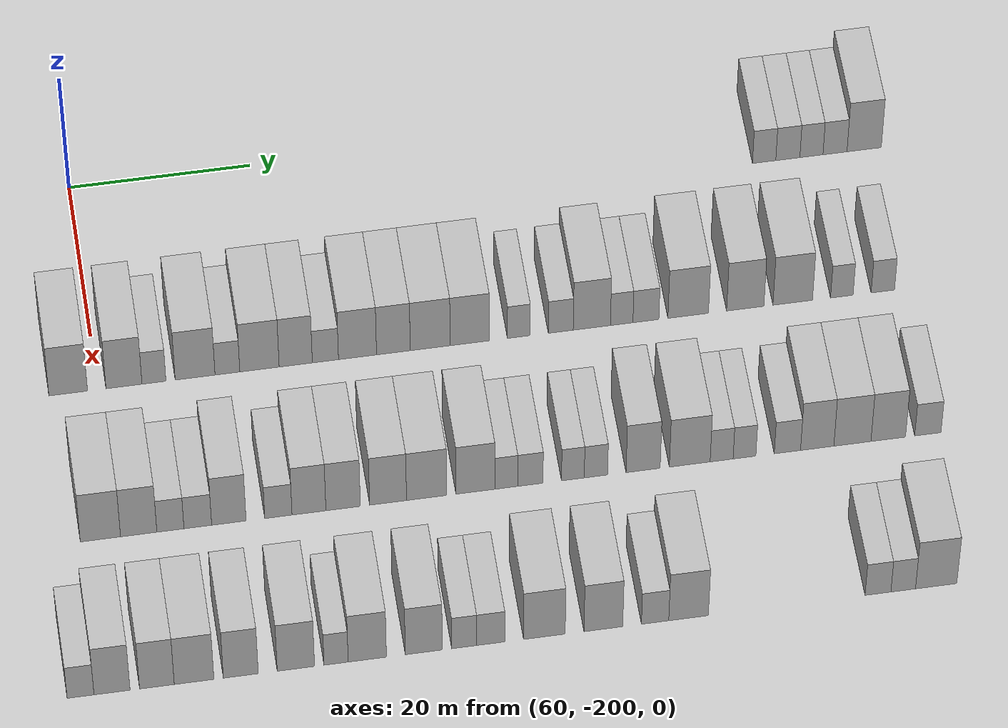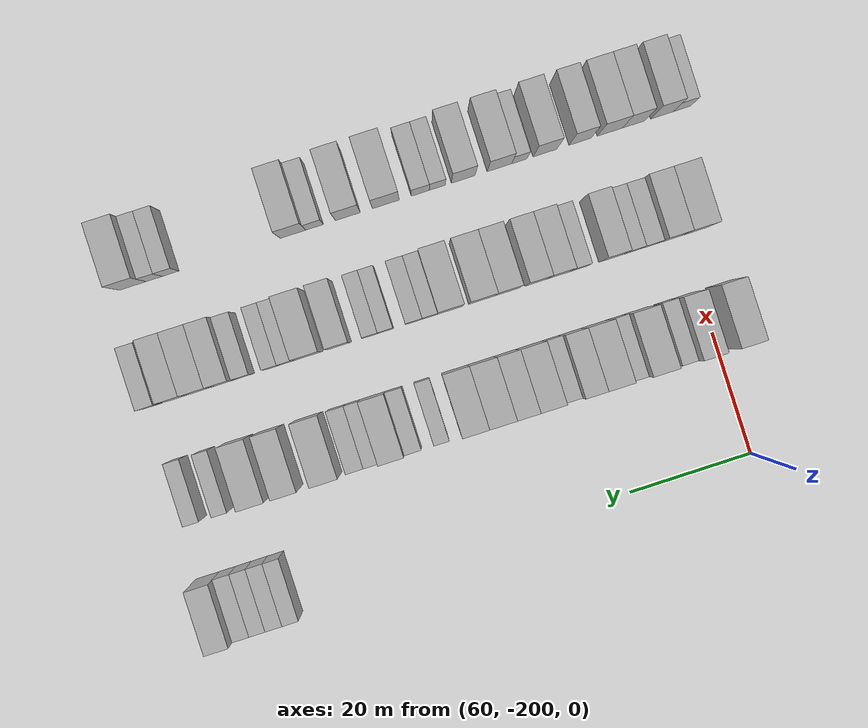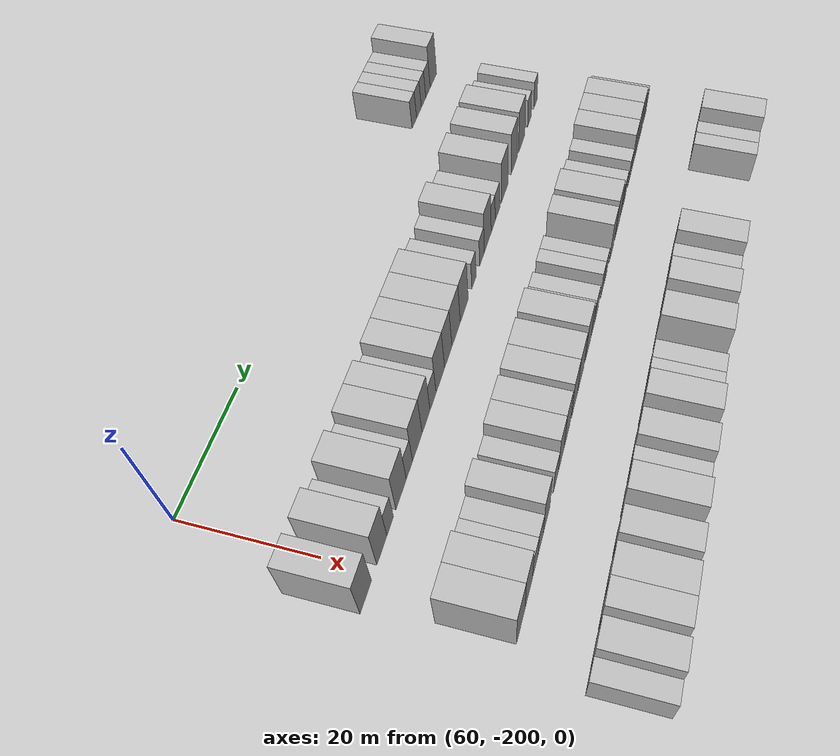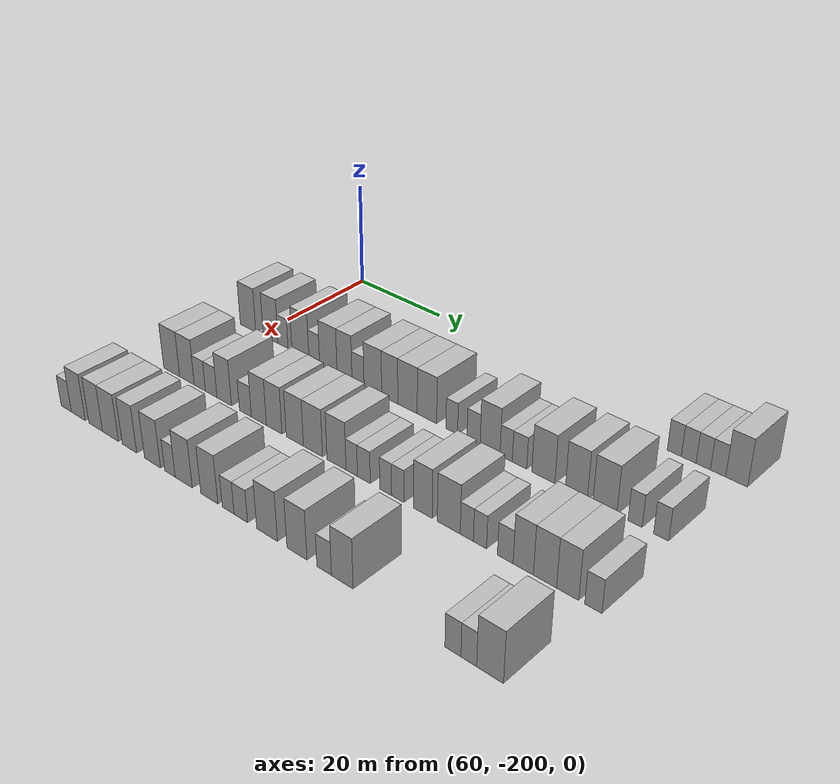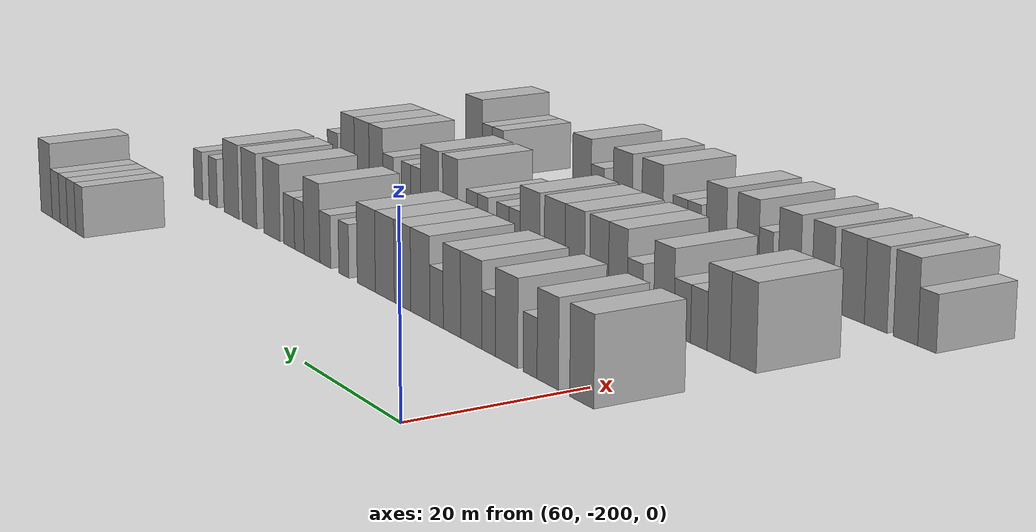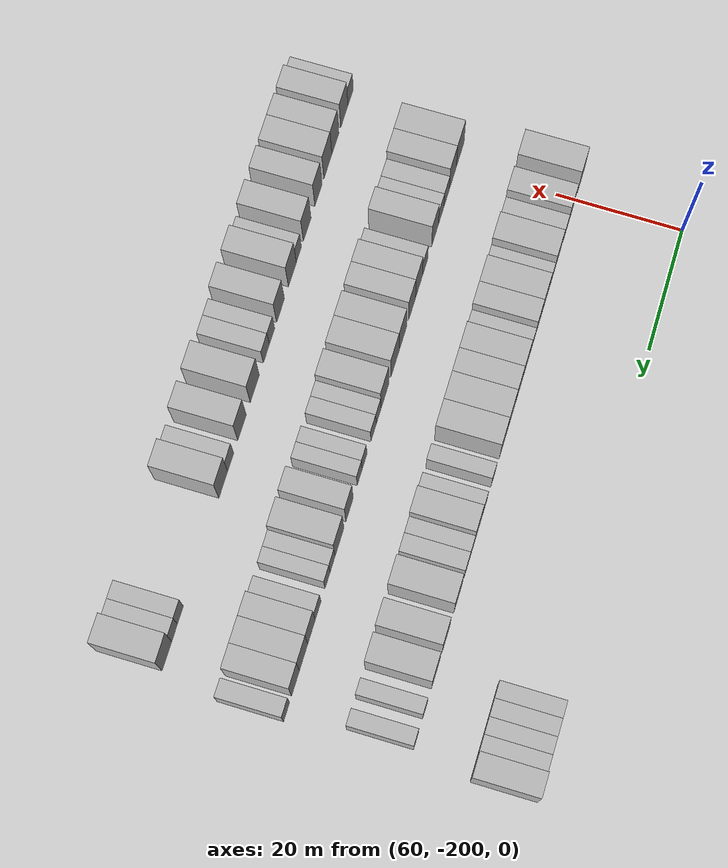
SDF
<sdf version="1.6">
 <world name="default">
  <model name="building_406">
   <static>1</static>
   <pose>63.0000 -123.8718 0 0.000000 0.000000 0.000000</pose>
   <link name="link">
    <pose>0 0 3.00 0 0 0</pose>
    <collision name="collision"><geometry><box><size>10.0000 2.6096 6.0000</size></box></geometry></collision>
    <visual name="visual">
     <cast_shadows>0</cast_shadows>
     <geometry><box><size>10.0000 2.6096 6.0000</size></box></geometry>
     <material>
      <script>
       <uri>model://HANNAS_wall/materials/scripts</uri>
       <uri>model://HANNAS_wall/materials/textures</uri>
       <name>vrc/HANNAS_wall</name>
      </script>
     </material>
    </visual>
   </link>
  </model>
  <model name="building_407">
   <static>1</static>
   <pose>63.0000 -121.2201 0 0.000000 0.000000 0.000000</pose>
   <link name="link">
    <pose>0 0 3.00 0 0 0</pose>
    <collision name="collision"><geometry><box><size>10.0000 2.6938 6.0000</size></box></geometry></collision>
    <visual name="visual">
     <cast_shadows>0</cast_shadows>
     <geometry><box><size>10.0000 2.6938 6.0000</size></box></geometry>
     <material>
      <script>
       <uri>model://HANNAS_wall/materials/scripts</uri>
       <uri>model://HANNAS_wall/materials/textures</uri>
       <name>vrc/HANNAS_wall</name>
      </script>
     </material>
    </visual>
   </link>
  </model>
  <model name="building_408">
   <static>1</static>
   <pose>63.0000 -118.5775 0 0.000000 0.000000 0.000000</pose>
   <link name="link">
    <pose>0 0 3.00 0 0 0</pose>
    <collision name="collision"><geometry><box><size>10.0000 2.5914 6.0000</size></box></geometry></collision>
    <visual name="visual">
     <cast_shadows>0</cast_shadows>
     <geometry><box><size>10.0000 2.5914 6.0000</size></box></geometry>
     <material>
      <script>
       <uri>model://HANNAS_wall/materials/scripts</uri>
       <uri>model://HANNAS_wall/materials/textures</uri>
       <name>vrc/HANNAS_wall</name>
      </script>
     </material>
    </visual>
   </link>
  </model>
  <model name="building_409">
   <static>1</static>
   <pose>63.0000 -115.9377 0 0.000000 0.000000 0.000000</pose>
   <link name="link">
    <pose>0 0 3.00 0 0 0</pose>
    <collision name="collision"><geometry><box><size>10.0000 2.6881 6.0000</size></box></geometry></collision>
    <visual name="visual">
     <cast_shadows>0</cast_shadows>
     <geometry><box><size>10.0000 2.6881 6.0000</size></box></geometry>
     <material>
      <script>
       <uri>model://HANNAS_wall/materials/scripts</uri>
       <uri>model://HANNAS_wall/materials/textures</uri>
       <name>vrc/HANNAS_wall</name>
      </script>
     </material>
    </visual>
   </link>
  </model>
  <model name="building_410">
   <static>1</static>
   <pose>63.0000 -112.6688 0 0.000000 0.000000 0.000000</pose>
   <link name="link">
    <pose>0 0 4.50 0 0 0</pose>
    <collision name="collision"><geometry><box><size>10.0000 3.8497 9.0000</size></box></geometry></collision>
    <visual name="visual">
     <cast_shadows>0</cast_shadows>
     <geometry><box><size>10.0000 3.8497 9.0000</size></box></geometry>
     <material>
      <script>
       <uri>model://HANNAS_wall/materials/scripts</uri>
       <uri>model://HANNAS_wall/materials/textures</uri>
       <name>vrc/HANNAS_wall</name>
      </script>
     </material>
    </visual>
   </link>
  </model>
  <model name="building_551">
   <static>1</static>
   <pose>82.0000 -203.2256 0 0.000000 0.000000 0.000000</pose>
   <link name="link">
    <pose>0 0 4.50 0 0 0</pose>
    <collision name="collision"><geometry><box><size>10.0000 4.1872 9.0000</size></box></geometry></collision>
    <visual name="visual">
     <cast_shadows>0</cast_shadows>
     <geometry><box><size>10.0000 4.1872 9.0000</size></box></geometry>
     <material>
      <script>
       <uri>model://HANNAS_wall/materials/scripts</uri>
       <uri>model://HANNAS_wall/materials/textures</uri>
       <name>vrc/HANNAS_wall</name>
      </script>
     </material>
    </visual>
   </link>
  </model>
  <model name="building_552">
   <static>1</static>
   <pose>82.0000 -197.1803 0 0.000000 0.000000 0.000000</pose>
   <link name="link">
    <pose>0 0 4.50 0 0 0</pose>
    <collision name="collision"><geometry><box><size>10.0000 3.9033 9.0000</size></box></geometry></collision>
    <visual name="visual">
     <cast_shadows>0</cast_shadows>
     <geometry><box><size>10.0000 3.9033 9.0000</size></box></geometry>
     <material>
      <script>
       <uri>model://HANNAS_wall/materials/scripts</uri>
       <uri>model://HANNAS_wall/materials/textures</uri>
       <name>vrc/HANNAS_wall</name>
      </script>
     </material>
    </visual>
   </link>
  </model>
  <model name="building_553">
   <static>1</static>
   <pose>82.0000 -193.9284 0 0.000000 0.000000 0.000000</pose>
   <link name="link">
    <pose>0 0 3.00 0 0 0</pose>
    <collision name="collision"><geometry><box><size>10.0000 2.6006 6.0000</size></box></geometry></collision>
    <visual name="visual">
     <cast_shadows>0</cast_shadows>
     <geometry><box><size>10.0000 2.6006 6.0000</size></box></geometry>
     <material>
      <script>
       <uri>model://HANNAS_wall/materials/scripts</uri>
       <uri>model://HANNAS_wall/materials/textures</uri>
       <name>vrc/HANNAS_wall</name>
      </script>
     </material>
    </visual>
   </link>
  </model>
  <model name="building_554">
   <static>1</static>
   <pose>82.0000 -189.4644 0 0.000000 0.000000 0.000000</pose>
   <link name="link">
    <pose>0 0 4.50 0 0 0</pose>
    <collision name="collision"><geometry><box><size>10.0000 4.3275 9.0000</size></box></geometry></collision>
    <visual name="visual">
     <cast_shadows>0</cast_shadows>
     <geometry><box><size>10.0000 4.3275 9.0000</size></box></geometry>
     <material>
      <script>
       <uri>model://HANNAS_wall/materials/scripts</uri>
       <uri>model://HANNAS_wall/materials/textures</uri>
       <name>vrc/HANNAS_wall</name>
      </script>
     </material>
    </visual>
   </link>
  </model>
  <model name="building_555">
   <static>1</static>
   <pose>82.0000 -185.9500 0 0.000000 0.000000 0.000000</pose>
   <link name="link">
    <pose>0 0 3.00 0 0 0</pose>
    <collision name="collision"><geometry><box><size>10.0000 2.7013 6.0000</size></box></geometry></collision>
    <visual name="visual">
     <cast_shadows>0</cast_shadows>
     <geometry><box><size>10.0000 2.7013 6.0000</size></box></geometry>
     <material>
      <script>
       <uri>model://HANNAS_wall/materials/scripts</uri>
       <uri>model://HANNAS_wall/materials/textures</uri>
       <name>vrc/HANNAS_wall</name>
      </script>
     </material>
    </visual>
   </link>
  </model>
  <model name="building_556">
   <static>1</static>
   <pose>82.0000 -182.4614 0 0.000000 0.000000 0.000000</pose>
   <link name="link">
    <pose>0 0 4.50 0 0 0</pose>
    <collision name="collision"><geometry><box><size>10.0000 4.2758 9.0000</size></box></geometry></collision>
    <visual name="visual">
     <cast_shadows>0</cast_shadows>
     <geometry><box><size>10.0000 4.2758 9.0000</size></box></geometry>
     <material>
      <script>
       <uri>model://HANNAS_wall/materials/scripts</uri>
       <uri>model://HANNAS_wall/materials/textures</uri>
       <name>vrc/HANNAS_wall</name>
      </script>
     </material>
    </visual>
   </link>
  </model>
  <model name="building_557">
   <static>1</static>
   <pose>82.0000 -178.5161 0 0.000000 0.000000 0.000000</pose>
   <link name="link">
    <pose>0 0 4.50 0 0 0</pose>
    <collision name="collision"><geometry><box><size>10.0000 3.6148 9.0000</size></box></geometry></collision>
    <visual name="visual">
     <cast_shadows>0</cast_shadows>
     <geometry><box><size>10.0000 3.6148 9.0000</size></box></geometry>
     <material>
      <script>
       <uri>model://HANNAS_wall/materials/scripts</uri>
       <uri>model://HANNAS_wall/materials/textures</uri>
       <name>vrc/HANNAS_wall</name>
      </script>
     </material>
    </visual>
   </link>
  </model>
  <model name="building_558">
   <static>1</static>
   <pose>82.0000 -175.2828 0 0.000000 0.000000 0.000000</pose>
   <link name="link">
    <pose>0 0 3.00 0 0 0</pose>
    <collision name="collision"><geometry><box><size>10.0000 2.8520 6.0000</size></box></geometry></collision>
    <visual name="visual">
     <cast_shadows>0</cast_shadows>
     <geometry><box><size>10.0000 2.8520 6.0000</size></box></geometry>
     <material>
      <script>
       <uri>model://HANNAS_wall/materials/scripts</uri>
       <uri>model://HANNAS_wall/materials/textures</uri>
       <name>vrc/HANNAS_wall</name>
      </script>
     </material>
    </visual>
   </link>
  </model>
  <model name="building_559">
   <static>1</static>
   <pose>82.0000 -171.7832 0 0.000000 0.000000 0.000000</pose>
   <link name="link">
    <pose>0 0 4.50 0 0 0</pose>
    <collision name="collision"><geometry><box><size>10.0000 4.1472 9.0000</size></box></geometry></collision>
    <visual name="visual">
     <cast_shadows>0</cast_shadows>
     <geometry><box><size>10.0000 4.1472 9.0000</size></box></geometry>
     <material>
      <script>
       <uri>model://HANNAS_wall/materials/scripts</uri>
       <uri>model://HANNAS_wall/materials/textures</uri>
       <name>vrc/HANNAS_wall</name>
      </script>
     </material>
    </visual>
   </link>
  </model>
  <model name="building_560">
   <static>1</static>
   <pose>82.0000 -167.8687 0 0.000000 0.000000 0.000000</pose>
   <link name="link">
    <pose>0 0 4.50 0 0 0</pose>
    <collision name="collision"><geometry><box><size>10.0000 3.6818 9.0000</size></box></geometry></collision>
    <visual name="visual">
     <cast_shadows>0</cast_shadows>
     <geometry><box><size>10.0000 3.6818 9.0000</size></box></geometry>
     <material>
      <script>
       <uri>model://HANNAS_wall/materials/scripts</uri>
       <uri>model://HANNAS_wall/materials/textures</uri>
       <name>vrc/HANNAS_wall</name>
      </script>
     </material>
    </visual>
   </link>
  </model>
  <model name="building_561">
   <static>1</static>
   <pose>82.0000 -163.8502 0 0.000000 0.000000 0.000000</pose>
   <link name="link">
    <pose>0 0 4.50 0 0 0</pose>
    <collision name="collision"><geometry><box><size>10.0000 4.3551 9.0000</size></box></geometry></collision>
    <visual name="visual">
     <cast_shadows>0</cast_shadows>
     <geometry><box><size>10.0000 4.3551 9.0000</size></box></geometry>
     <material>
      <script>
       <uri>model://HANNAS_wall/materials/scripts</uri>
       <uri>model://HANNAS_wall/materials/textures</uri>
       <name>vrc/HANNAS_wall</name>
      </script>
     </material>
    </visual>
   </link>
  </model>
  <model name="building_562">
   <static>1</static>
   <pose>82.0000 -159.5356 0 0.000000 0.000000 0.000000</pose>
   <link name="link">
    <pose>0 0 4.50 0 0 0</pose>
    <collision name="collision"><geometry><box><size>10.0000 4.2741 9.0000</size></box></geometry></collision>
    <visual name="visual">
     <cast_shadows>0</cast_shadows>
     <geometry><box><size>10.0000 4.2741 9.0000</size></box></geometry>
     <material>
      <script>
       <uri>model://HANNAS_wall/materials/scripts</uri>
       <uri>model://HANNAS_wall/materials/textures</uri>
       <name>vrc/HANNAS_wall</name>
      </script>
     </material>
    </visual>
   </link>
  </model>
  <model name="building_563">
   <static>1</static>
   <pose>82.0000 -154.1586 0 0.000000 0.000000 0.000000</pose>
   <link name="link">
    <pose>0 0 3.00 0 0 0</pose>
    <collision name="collision"><geometry><box><size>10.0000 2.4799 6.0000</size></box></geometry></collision>
    <visual name="visual">
     <cast_shadows>0</cast_shadows>
     <geometry><box><size>10.0000 2.4799 6.0000</size></box></geometry>
     <material>
      <script>
       <uri>model://HANNAS_wall/materials/scripts</uri>
       <uri>model://HANNAS_wall/materials/textures</uri>
       <name>vrc/HANNAS_wall</name>
      </script>
     </material>
    </visual>
   </link>
  </model>
  <model name="building_564">
   <static>1</static>
   <pose>82.0000 -149.5549 0 0.000000 0.000000 0.000000</pose>
   <link name="link">
    <pose>0 0 3.00 0 0 0</pose>
    <collision name="collision"><geometry><box><size>10.0000 2.7276 6.0000</size></box></geometry></collision>
    <visual name="visual">
     <cast_shadows>0</cast_shadows>
     <geometry><box><size>10.0000 2.7276 6.0000</size></box></geometry>
     <material>
      <script>
       <uri>model://HANNAS_wall/materials/scripts</uri>
       <uri>model://HANNAS_wall/materials/textures</uri>
       <name>vrc/HANNAS_wall</name>
      </script>
     </material>
    </visual>
   </link>
  </model>
  <model name="building_565">
   <static>1</static>
   <pose>82.0000 -146.1520 0 0.000000 0.000000 0.000000</pose>
   <link name="link">
    <pose>0 0 4.50 0 0 0</pose>
    <collision name="collision"><geometry><box><size>10.0000 4.0783 9.0000</size></box></geometry></collision>
    <visual name="visual">
     <cast_shadows>0</cast_shadows>
     <geometry><box><size>10.0000 4.0783 9.0000</size></box></geometry>
     <material>
      <script>
       <uri>model://HANNAS_wall/materials/scripts</uri>
       <uri>model://HANNAS_wall/materials/textures</uri>
       <name>vrc/HANNAS_wall</name>
      </script>
     </material>
    </visual>
   </link>
  </model>
  <model name="building_566">
   <static>1</static>
   <pose>82.0000 -142.8751 0 0.000000 0.000000 0.000000</pose>
   <link name="link">
    <pose>0 0 3.00 0 0 0</pose>
    <collision name="collision"><geometry><box><size>10.0000 2.4755 6.0000</size></box></geometry></collision>
    <visual name="visual">
     <cast_shadows>0</cast_shadows>
     <geometry><box><size>10.0000 2.4755 6.0000</size></box></geometry>
     <material>
      <script>
       <uri>model://HANNAS_wall/materials/scripts</uri>
       <uri>model://HANNAS_wall/materials/textures</uri>
       <name>vrc/HANNAS_wall</name>
      </script>
     </material>
    </visual>
   </link>
  </model>
  <model name="building_567">
   <static>1</static>
   <pose>82.0000 -140.2124 0 0.000000 0.000000 0.000000</pose>
   <link name="link">
    <pose>0 0 3.00 0 0 0</pose>
    <collision name="collision"><geometry><box><size>10.0000 2.8498 6.0000</size></box></geometry></collision>
    <visual name="visual">
     <cast_shadows>0</cast_shadows>
     <geometry><box><size>10.0000 2.8498 6.0000</size></box></geometry>
     <material>
      <script>
       <uri>model://HANNAS_wall/materials/scripts</uri>
       <uri>model://HANNAS_wall/materials/textures</uri>
       <name>vrc/HANNAS_wall</name>
      </script>
     </material>
    </visual>
   </link>
  </model>
  <model name="building_568">
   <static>1</static>
   <pose>82.0000 -135.5611 0 0.000000 0.000000 0.000000</pose>
   <link name="link">
    <pose>0 0 4.50 0 0 0</pose>
    <collision name="collision"><geometry><box><size>10.0000 4.4527 9.0000</size></box></geometry></collision>
    <visual name="visual">
     <cast_shadows>0</cast_shadows>
     <geometry><box><size>10.0000 4.4527 9.0000</size></box></geometry>
     <material>
      <script>
       <uri>model://HANNAS_wall/materials/scripts</uri>
       <uri>model://HANNAS_wall/materials/textures</uri>
       <name>vrc/HANNAS_wall</name>
      </script>
     </material>
    </visual>
   </link>
  </model>
  <model name="building_569">
   <static>1</static>
   <pose>82.0000 -129.2792 0 0.000000 0.000000 0.000000</pose>
   <link name="link">
    <pose>0 0 4.50 0 0 0</pose>
    <collision name="collision"><geometry><box><size>10.0000 4.1110 9.0000</size></box></geometry></collision>
    <visual name="visual">
     <cast_shadows>0</cast_shadows>
     <geometry><box><size>10.0000 4.1110 9.0000</size></box></geometry>
     <material>
      <script>
       <uri>model://HANNAS_wall/materials/scripts</uri>
       <uri>model://HANNAS_wall/materials/textures</uri>
       <name>vrc/HANNAS_wall</name>
      </script>
     </material>
    </visual>
   </link>
  </model>
  <model name="building_570">
   <static>1</static>
   <pose>82.0000 -124.0464 0 0.000000 0.000000 0.000000</pose>
   <link name="link">
    <pose>0 0 4.50 0 0 0</pose>
    <collision name="collision"><geometry><box><size>10.0000 4.3547 9.0000</size></box></geometry></collision>
    <visual name="visual">
     <cast_shadows>0</cast_shadows>
     <geometry><box><size>10.0000 4.3547 9.0000</size></box></geometry>
     <material>
      <script>
       <uri>model://HANNAS_wall/materials/scripts</uri>
       <uri>model://HANNAS_wall/materials/textures</uri>
       <name>vrc/HANNAS_wall</name>
      </script>
     </material>
    </visual>
   </link>
  </model>
  <model name="building_571">
   <static>1</static>
   <pose>82.0000 -118.6269 0 0.000000 0.000000 0.000000</pose>
   <link name="link">
    <pose>0 0 3.00 0 0 0</pose>
    <collision name="collision"><geometry><box><size>10.0000 2.4843 6.0000</size></box></geometry></collision>
    <visual name="visual">
     <cast_shadows>0</cast_shadows>
     <geometry><box><size>10.0000 2.4843 6.0000</size></box></geometry>
     <material>
      <script>
       <uri>model://HANNAS_wall/materials/scripts</uri>
       <uri>model://HANNAS_wall/materials/textures</uri>
       <name>vrc/HANNAS_wall</name>
      </script>
     </material>
    </visual>
   </link>
  </model>
  <model name="building_572">
   <static>1</static>
   <pose>82.0000 -114.0950 0 0.000000 0.000000 0.000000</pose>
   <link name="link">
    <pose>0 0 3.00 0 0 0</pose>
    <collision name="collision"><geometry><box><size>10.0000 2.5794 6.0000</size></box></geometry></collision>
    <visual name="visual">
     <cast_shadows>0</cast_shadows>
     <geometry><box><size>10.0000 2.5794 6.0000</size></box></geometry>
     <material>
      <script>
       <uri>model://HANNAS_wall/materials/scripts</uri>
       <uri>model://HANNAS_wall/materials/textures</uri>
       <name>vrc/HANNAS_wall</name>
      </script>
     </material>
    </visual>
   </link>
  </model>
  <model name="building_724">
   <static>1</static>
   <pose>101.0000 -201.9670 0 0.000000 0.000000 0.000000</pose>
   <link name="link">
    <pose>0 0 4.50 0 0 0</pose>
    <collision name="collision"><geometry><box><size>10.0000 4.3001 9.0000</size></box></geometry></collision>
    <visual name="visual">
     <cast_shadows>0</cast_shadows>
     <geometry><box><size>10.0000 4.3001 9.0000</size></box></geometry>
     <material>
      <script>
       <uri>model://HANNAS_wall/materials/scripts</uri>
       <uri>model://HANNAS_wall/materials/textures</uri>
       <name>vrc/HANNAS_wall</name>
      </script>
     </material>
    </visual>
   </link>
  </model>
  <model name="building_725">
   <static>1</static>
   <pose>101.0000 -197.8767 0 0.000000 0.000000 0.000000</pose>
   <link name="link">
    <pose>0 0 4.50 0 0 0</pose>
    <collision name="collision"><geometry><box><size>10.0000 3.8806 9.0000</size></box></geometry></collision>
    <visual name="visual">
     <cast_shadows>0</cast_shadows>
     <geometry><box><size>10.0000 3.8806 9.0000</size></box></geometry>
     <material>
      <script>
       <uri>model://HANNAS_wall/materials/scripts</uri>
       <uri>model://HANNAS_wall/materials/textures</uri>
       <name>vrc/HANNAS_wall</name>
      </script>
     </material>
    </visual>
   </link>
  </model>
  <model name="building_726">
   <static>1</static>
   <pose>101.0000 -194.4878 0 0.000000 0.000000 0.000000</pose>
   <link name="link">
    <pose>0 0 3.00 0 0 0</pose>
    <collision name="collision"><geometry><box><size>10.0000 2.8972 6.0000</size></box></geometry></collision>
    <visual name="visual">
     <cast_shadows>0</cast_shadows>
     <geometry><box><size>10.0000 2.8972 6.0000</size></box></geometry>
     <material>
      <script>
       <uri>model://HANNAS_wall/materials/scripts</uri>
       <uri>model://HANNAS_wall/materials/textures</uri>
       <name>vrc/HANNAS_wall</name>
      </script>
     </material>
    </visual>
   </link>
  </model>
  <model name="building_727">
   <static>1</static>
   <pose>101.0000 -191.5587 0 0.000000 0.000000 0.000000</pose>
   <link name="link">
    <pose>0 0 3.00 0 0 0</pose>
    <collision name="collision"><geometry><box><size>10.0000 2.9610 6.0000</size></box></geometry></collision>
    <visual name="visual">
     <cast_shadows>0</cast_shadows>
     <geometry><box><size>10.0000 2.9610 6.0000</size></box></geometry>
     <material>
      <script>
       <uri>model://HANNAS_wall/materials/scripts</uri>
       <uri>model://HANNAS_wall/materials/textures</uri>
       <name>vrc/HANNAS_wall</name>
      </script>
     </material>
    </visual>
   </link>
  </model>
  <model name="building_728">
   <static>1</static>
   <pose>101.0000 -188.2337 0 0.000000 0.000000 0.000000</pose>
   <link name="link">
    <pose>0 0 4.50 0 0 0</pose>
    <collision name="collision"><geometry><box><size>10.0000 3.6889 9.0000</size></box></geometry></collision>
    <visual name="visual">
     <cast_shadows>0</cast_shadows>
     <geometry><box><size>10.0000 3.6889 9.0000</size></box></geometry>
     <material>
      <script>
       <uri>model://HANNAS_wall/materials/scripts</uri>
       <uri>model://HANNAS_wall/materials/textures</uri>
       <name>vrc/HANNAS_wall</name>
      </script>
     </material>
    </visual>
   </link>
  </model>
  <model name="building_729">
   <static>1</static>
   <pose>101.0000 -182.9278 0 0.000000 0.000000 0.000000</pose>
   <link name="link">
    <pose>0 0 3.00 0 0 0</pose>
    <collision name="collision"><geometry><box><size>10.0000 2.9229 6.0000</size></box></geometry></collision>
    <visual name="visual">
     <cast_shadows>0</cast_shadows>
     <geometry><box><size>10.0000 2.9229 6.0000</size></box></geometry>
     <material>
      <script>
       <uri>model://HANNAS_wall/materials/scripts</uri>
       <uri>model://HANNAS_wall/materials/textures</uri>
       <name>vrc/HANNAS_wall</name>
      </script>
     </material>
    </visual>
   </link>
  </model>
  <model name="building_730">
   <static>1</static>
   <pose>101.0000 -179.6478 0 0.000000 0.000000 0.000000</pose>
   <link name="link">
    <pose>0 0 4.50 0 0 0</pose>
    <collision name="collision"><geometry><box><size>10.0000 3.6370 9.0000</size></box></geometry></collision>
    <visual name="visual">
     <cast_shadows>0</cast_shadows>
     <geometry><box><size>10.0000 3.6370 9.0000</size></box></geometry>
     <material>
      <script>
       <uri>model://HANNAS_wall/materials/scripts</uri>
       <uri>model://HANNAS_wall/materials/textures</uri>
       <name>vrc/HANNAS_wall</name>
      </script>
     </material>
    </visual>
   </link>
  </model>
  <model name="building_731">
   <static>1</static>
   <pose>101.0000 -175.9796 0 0.000000 0.000000 0.000000</pose>
   <link name="link">
    <pose>0 0 4.50 0 0 0</pose>
    <collision name="collision"><geometry><box><size>10.0000 3.6995 9.0000</size></box></geometry></collision>
    <visual name="visual">
     <cast_shadows>0</cast_shadows>
     <geometry><box><size>10.0000 3.6995 9.0000</size></box></geometry>
     <material>
      <script>
       <uri>model://HANNAS_wall/materials/scripts</uri>
       <uri>model://HANNAS_wall/materials/textures</uri>
       <name>vrc/HANNAS_wall</name>
      </script>
     </material>
    </visual>
   </link>
  </model>
  <model name="building_732">
   <static>1</static>
   <pose>101.0000 -171.1484 0 0.000000 0.000000 0.000000</pose>
   <link name="link">
    <pose>0 0 4.50 0 0 0</pose>
    <collision name="collision"><geometry><box><size>10.0000 3.9628 9.0000</size></box></geometry></collision>
    <visual name="visual">
     <cast_shadows>0</cast_shadows>
     <geometry><box><size>10.0000 3.9628 9.0000</size></box></geometry>
     <material>
      <script>
       <uri>model://HANNAS_wall/materials/scripts</uri>
       <uri>model://HANNAS_wall/materials/textures</uri>
       <name>vrc/HANNAS_wall</name>
      </script>
     </material>
    </visual>
   </link>
  </model>
  <model name="building_733">
   <static>1</static>
   <pose>101.0000 -167.0055 0 0.000000 0.000000 0.000000</pose>
   <link name="link">
    <pose>0 0 4.50 0 0 0</pose>
    <collision name="collision"><geometry><box><size>10.0000 4.3230 9.0000</size></box></geometry></collision>
    <visual name="visual">
     <cast_shadows>0</cast_shadows>
     <geometry><box><size>10.0000 4.3230 9.0000</size></box></geometry>
     <material>
      <script>
       <uri>model://HANNAS_wall/materials/scripts</uri>
       <uri>model://HANNAS_wall/materials/textures</uri>
       <name>vrc/HANNAS_wall</name>
      </script>
     </material>
    </visual>
   </link>
  </model>
  <model name="building_734">
   <static>1</static>
   <pose>101.0000 -161.7528 0 0.000000 0.000000 0.000000</pose>
   <link name="link">
    <pose>0 0 4.50 0 0 0</pose>
    <collision name="collision"><geometry><box><size>10.0000 4.1823 9.0000</size></box></geometry></collision>
    <visual name="visual">
     <cast_shadows>0</cast_shadows>
     <geometry><box><size>10.0000 4.1823 9.0000</size></box></geometry>
     <material>
      <script>
       <uri>model://HANNAS_wall/materials/scripts</uri>
       <uri>model://HANNAS_wall/materials/textures</uri>
       <name>vrc/HANNAS_wall</name>
      </script>
     </material>
    </visual>
   </link>
  </model>
  <model name="building_735">
   <static>1</static>
   <pose>101.0000 -158.4237 0 0.000000 0.000000 0.000000</pose>
   <link name="link">
    <pose>0 0 3.00 0 0 0</pose>
    <collision name="collision"><geometry><box><size>10.0000 2.4758 6.0000</size></box></geometry></collision>
    <visual name="visual">
     <cast_shadows>0</cast_shadows>
     <geometry><box><size>10.0000 2.4758 6.0000</size></box></geometry>
     <material>
      <script>
       <uri>model://HANNAS_wall/materials/scripts</uri>
       <uri>model://HANNAS_wall/materials/textures</uri>
       <name>vrc/HANNAS_wall</name>
      </script>
     </material>
    </visual>
   </link>
  </model>
  <model name="building_736">
   <static>1</static>
   <pose>101.0000 -155.8242 0 0.000000 0.000000 0.000000</pose>
   <link name="link">
    <pose>0 0 3.00 0 0 0</pose>
    <collision name="collision"><geometry><box><size>10.0000 2.7232 6.0000</size></box></geometry></collision>
    <visual name="visual">
     <cast_shadows>0</cast_shadows>
     <geometry><box><size>10.0000 2.7232 6.0000</size></box></geometry>
     <material>
      <script>
       <uri>model://HANNAS_wall/materials/scripts</uri>
       <uri>model://HANNAS_wall/materials/textures</uri>
       <name>vrc/HANNAS_wall</name>
      </script>
     </material>
    </visual>
   </link>
  </model>
  <model name="building_737">
   <static>1</static>
   <pose>101.0000 -151.2335 0 0.000000 0.000000 0.000000</pose>
   <link name="link">
    <pose>0 0 3.00 0 0 0</pose>
    <collision name="collision"><geometry><box><size>10.0000 2.4583 6.0000</size></box></geometry></collision>
    <visual name="visual">
     <cast_shadows>0</cast_shadows>
     <geometry><box><size>10.0000 2.4583 6.0000</size></box></geometry>
     <material>
      <script>
       <uri>model://HANNAS_wall/materials/scripts</uri>
       <uri>model://HANNAS_wall/materials/textures</uri>
       <name>vrc/HANNAS_wall</name>
      </script>
     </material>
    </visual>
   </link>
  </model>
  <model name="building_738">
   <static>1</static>
   <pose>101.0000 -148.7455 0 0.000000 0.000000 0.000000</pose>
   <link name="link">
    <pose>0 0 3.00 0 0 0</pose>
    <collision name="collision"><geometry><box><size>10.0000 2.5178 6.0000</size></box></geometry></collision>
    <visual name="visual">
     <cast_shadows>0</cast_shadows>
     <geometry><box><size>10.0000 2.5178 6.0000</size></box></geometry>
     <material>
      <script>
       <uri>model://HANNAS_wall/materials/scripts</uri>
       <uri>model://HANNAS_wall/materials/textures</uri>
       <name>vrc/HANNAS_wall</name>
      </script>
     </material>
    </visual>
   </link>
  </model>
  <model name="building_739">
   <static>1</static>
   <pose>101.0000 -143.6428 0 0.000000 0.000000 0.000000</pose>
   <link name="link">
    <pose>0 0 4.50 0 0 0</pose>
    <collision name="collision"><geometry><box><size>10.0000 3.6876 9.0000</size></box></geometry></collision>
    <visual name="visual">
     <cast_shadows>0</cast_shadows>
     <geometry><box><size>10.0000 3.6876 9.0000</size></box></geometry>
     <material>
      <script>
       <uri>model://HANNAS_wall/materials/scripts</uri>
       <uri>model://HANNAS_wall/materials/textures</uri>
       <name>vrc/HANNAS_wall</name>
      </script>
     </material>
    </visual>
   </link>
  </model>
  <model name="building_740">
   <static>1</static>
   <pose>101.0000 -138.5893 0 0.000000 0.000000 0.000000</pose>
   <link name="link">
    <pose>0 0 4.50 0 0 0</pose>
    <collision name="collision"><geometry><box><size>10.0000 4.4194 9.0000</size></box></geometry></collision>
    <visual name="visual">
     <cast_shadows>0</cast_shadows>
     <geometry><box><size>10.0000 4.4194 9.0000</size></box></geometry>
     <material>
      <script>
       <uri>model://HANNAS_wall/materials/scripts</uri>
       <uri>model://HANNAS_wall/materials/textures</uri>
       <name>vrc/HANNAS_wall</name>
      </script>
     </material>
    </visual>
   </link>
  </model>
  <model name="building_741">
   <static>1</static>
   <pose>101.0000 -135.1345 0 0.000000 0.000000 0.000000</pose>
   <link name="link">
    <pose>0 0 3.00 0 0 0</pose>
    <collision name="collision"><geometry><box><size>10.0000 2.4901 6.0000</size></box></geometry></collision>
    <visual name="visual">
     <cast_shadows>0</cast_shadows>
     <geometry><box><size>10.0000 2.4901 6.0000</size></box></geometry>
     <material>
      <script>
       <uri>model://HANNAS_wall/materials/scripts</uri>
       <uri>model://HANNAS_wall/materials/textures</uri>
       <name>vrc/HANNAS_wall</name>
      </script>
     </material>
    </visual>
   </link>
  </model>
  <model name="building_742">
   <static>1</static>
   <pose>101.0000 -132.6549 0 0.000000 0.000000 0.000000</pose>
   <link name="link">
    <pose>0 0 3.00 0 0 0</pose>
    <collision name="collision"><geometry><box><size>10.0000 2.4691 6.0000</size></box></geometry></collision>
    <visual name="visual">
     <cast_shadows>0</cast_shadows>
     <geometry><box><size>10.0000 2.4691 6.0000</size></box></geometry>
     <material>
      <script>
       <uri>model://HANNAS_wall/materials/scripts</uri>
       <uri>model://HANNAS_wall/materials/textures</uri>
       <name>vrc/HANNAS_wall</name>
      </script>
     </material>
    </visual>
   </link>
  </model>
  <model name="building_743">
   <static>1</static>
   <pose>101.0000 -127.9946 0 0.000000 0.000000 0.000000</pose>
   <link name="link">
    <pose>0 0 3.00 0 0 0</pose>
    <collision name="collision"><geometry><box><size>10.0000 2.8514 6.0000</size></box></geometry></collision>
    <visual name="visual">
     <cast_shadows>0</cast_shadows>
     <geometry><box><size>10.0000 2.8514 6.0000</size></box></geometry>
     <material>
      <script>
       <uri>model://HANNAS_wall/materials/scripts</uri>
       <uri>model://HANNAS_wall/materials/textures</uri>
       <name>vrc/HANNAS_wall</name>
      </script>
     </material>
    </visual>
   </link>
  </model>
  <model name="building_744">
   <static>1</static>
   <pose>101.0000 -124.7561 0 0.000000 0.000000 0.000000</pose>
   <link name="link">
    <pose>0 0 4.50 0 0 0</pose>
    <collision name="collision"><geometry><box><size>10.0000 3.6257 9.0000</size></box></geometry></collision>
    <visual name="visual">
     <cast_shadows>0</cast_shadows>
     <geometry><box><size>10.0000 3.6257 9.0000</size></box></geometry>
     <material>
      <script>
       <uri>model://HANNAS_wall/materials/scripts</uri>
       <uri>model://HANNAS_wall/materials/textures</uri>
       <name>vrc/HANNAS_wall</name>
      </script>
     </material>
    </visual>
   </link>
  </model>
  <model name="building_745">
   <static>1</static>
   <pose>101.0000 -120.9249 0 0.000000 0.000000 0.000000</pose>
   <link name="link">
    <pose>0 0 4.50 0 0 0</pose>
    <collision name="collision"><geometry><box><size>10.0000 4.0365 9.0000</size></box></geometry></collision>
    <visual name="visual">
     <cast_shadows>0</cast_shadows>
     <geometry><box><size>10.0000 4.0365 9.0000</size></box></geometry>
     <material>
      <script>
       <uri>model://HANNAS_wall/materials/scripts</uri>
       <uri>model://HANNAS_wall/materials/textures</uri>
       <name>vrc/HANNAS_wall</name>
      </script>
     </material>
    </visual>
   </link>
  </model>
  <model name="building_746">
   <static>1</static>
   <pose>101.0000 -117.0247 0 0.000000 0.000000 0.000000</pose>
   <link name="link">
    <pose>0 0 4.50 0 0 0</pose>
    <collision name="collision"><geometry><box><size>10.0000 3.7640 9.0000</size></box></geometry></collision>
    <visual name="visual">
     <cast_shadows>0</cast_shadows>
     <geometry><box><size>10.0000 3.7640 9.0000</size></box></geometry>
     <material>
      <script>
       <uri>model://HANNAS_wall/materials/scripts</uri>
       <uri>model://HANNAS_wall/materials/textures</uri>
       <name>vrc/HANNAS_wall</name>
      </script>
     </material>
    </visual>
   </link>
  </model>
  <model name="building_747">
   <static>1</static>
   <pose>101.0000 -112.7125 0 0.000000 0.000000 0.000000</pose>
   <link name="link">
    <pose>0 0 3.00 0 0 0</pose>
    <collision name="collision"><geometry><box><size>10.0000 2.8603 6.0000</size></box></geometry></collision>
    <visual name="visual">
     <cast_shadows>0</cast_shadows>
     <geometry><box><size>10.0000 2.8603 6.0000</size></box></geometry>
     <material>
      <script>
       <uri>model://HANNAS_wall/materials/scripts</uri>
       <uri>model://HANNAS_wall/materials/textures</uri>
       <name>vrc/HANNAS_wall</name>
      </script>
     </material>
    </visual>
   </link>
  </model>
  <model name="building_903">
   <static>1</static>
   <pose>120.0000 -206.2819 0 0.000000 0.000000 0.000000</pose>
   <link name="link">
    <pose>0 0 3.00 0 0 0</pose>
    <collision name="collision"><geometry><box><size>10.0000 2.8287 6.0000</size></box></geometry></collision>
    <visual name="visual">
     <cast_shadows>0</cast_shadows>
     <geometry><box><size>10.0000 2.8287 6.0000</size></box></geometry>
     <material>
      <script>
       <uri>model://HANNAS_wall/materials/scripts</uri>
       <uri>model://HANNAS_wall/materials/textures</uri>
       <name>vrc/HANNAS_wall</name>
      </script>
     </material>
    </visual>
   </link>
  </model>
  <model name="building_904">
   <static>1</static>
   <pose>120.0000 -202.9726 0 0.000000 0.000000 0.000000</pose>
   <link name="link">
    <pose>0 0 4.50 0 0 0</pose>
    <collision name="collision"><geometry><box><size>10.0000 3.7900 9.0000</size></box></geometry></collision>
    <visual name="visual">
     <cast_shadows>0</cast_shadows>
     <geometry><box><size>10.0000 3.7900 9.0000</size></box></geometry>
     <material>
      <script>
       <uri>model://HANNAS_wall/materials/scripts</uri>
       <uri>model://HANNAS_wall/materials/textures</uri>
       <name>vrc/HANNAS_wall</name>
      </script>
     </material>
    </visual>
   </link>
  </model>
  <model name="building_905">
   <static>1</static>
   <pose>120.0000 -198.2537 0 0.000000 0.000000 0.000000</pose>
   <link name="link">
    <pose>0 0 4.50 0 0 0</pose>
    <collision name="collision"><geometry><box><size>10.0000 3.6478 9.0000</size></box></geometry></collision>
    <visual name="visual">
     <cast_shadows>0</cast_shadows>
     <geometry><box><size>10.0000 3.6478 9.0000</size></box></geometry>
     <material>
      <script>
       <uri>model://HANNAS_wall/materials/scripts</uri>
       <uri>model://HANNAS_wall/materials/textures</uri>
       <name>vrc/HANNAS_wall</name>
      </script>
     </material>
    </visual>
   </link>
  </model>
  <model name="building_906">
   <static>1</static>
   <pose>120.0000 -194.3421 0 0.000000 0.000000 0.000000</pose>
   <link name="link">
    <pose>0 0 4.50 0 0 0</pose>
    <collision name="collision"><geometry><box><size>10.0000 4.1755 9.0000</size></box></geometry></collision>
    <visual name="visual">
     <cast_shadows>0</cast_shadows>
     <geometry><box><size>10.0000 4.1755 9.0000</size></box></geometry>
     <material>
      <script>
       <uri>model://HANNAS_wall/materials/scripts</uri>
       <uri>model://HANNAS_wall/materials/textures</uri>
       <name>vrc/HANNAS_wall</name>
      </script>
     </material>
    </visual>
   </link>
  </model>
  <model name="building_907">
   <static>1</static>
   <pose>120.0000 -189.4123 0 0.000000 0.000000 0.000000</pose>
   <link name="link">
    <pose>0 0 4.50 0 0 0</pose>
    <collision name="collision"><geometry><box><size>10.0000 3.6841 9.0000</size></box></geometry></collision>
    <visual name="visual">
     <cast_shadows>0</cast_shadows>
     <geometry><box><size>10.0000 3.6841 9.0000</size></box></geometry>
     <material>
      <script>
       <uri>model://HANNAS_wall/materials/scripts</uri>
       <uri>model://HANNAS_wall/materials/textures</uri>
       <name>vrc/HANNAS_wall</name>
      </script>
     </material>
    </visual>
   </link>
  </model>
  <model name="building_908">
   <static>1</static>
   <pose>120.0000 -183.5998 0 0.000000 0.000000 0.000000</pose>
   <link name="link">
    <pose>0 0 4.50 0 0 0</pose>
    <collision name="collision"><geometry><box><size>10.0000 3.9409 9.0000</size></box></geometry></collision>
    <visual name="visual">
     <cast_shadows>0</cast_shadows>
     <geometry><box><size>10.0000 3.9409 9.0000</size></box></geometry>
     <material>
      <script>
       <uri>model://HANNAS_wall/materials/scripts</uri>
       <uri>model://HANNAS_wall/materials/textures</uri>
       <name>vrc/HANNAS_wall</name>
      </script>
     </material>
    </visual>
   </link>
  </model>
  <model name="building_909">
   <static>1</static>
   <pose>120.0000 -179.3496 0 0.000000 0.000000 0.000000</pose>
   <link name="link">
    <pose>0 0 3.00 0 0 0</pose>
    <collision name="collision"><geometry><box><size>10.0000 2.5594 6.0000</size></box></geometry></collision>
    <visual name="visual">
     <cast_shadows>0</cast_shadows>
     <geometry><box><size>10.0000 2.5594 6.0000</size></box></geometry>
     <material>
      <script>
       <uri>model://HANNAS_wall/materials/scripts</uri>
       <uri>model://HANNAS_wall/materials/textures</uri>
       <name>vrc/HANNAS_wall</name>
      </script>
     </material>
    </visual>
   </link>
  </model>
  <model name="building_910">
   <static>1</static>
   <pose>120.0000 -176.0481 0 0.000000 0.000000 0.000000</pose>
   <link name="link">
    <pose>0 0 4.50 0 0 0</pose>
    <collision name="collision"><geometry><box><size>10.0000 4.0437 9.0000</size></box></geometry></collision>
    <visual name="visual">
     <cast_shadows>0</cast_shadows>
     <geometry><box><size>10.0000 4.0437 9.0000</size></box></geometry>
     <material>
      <script>
       <uri>model://HANNAS_wall/materials/scripts</uri>
       <uri>model://HANNAS_wall/materials/textures</uri>
       <name>vrc/HANNAS_wall</name>
      </script>
     </material>
    </visual>
   </link>
  </model>
  <model name="building_911">
   <static>1</static>
   <pose>120.0000 -170.0678 0 0.000000 0.000000 0.000000</pose>
   <link name="link">
    <pose>0 0 4.50 0 0 0</pose>
    <collision name="collision"><geometry><box><size>10.0000 3.9169 9.0000</size></box></geometry></collision>
    <visual name="visual">
     <cast_shadows>0</cast_shadows>
     <geometry><box><size>10.0000 3.9169 9.0000</size></box></geometry>
     <material>
      <script>
       <uri>model://HANNAS_wall/materials/scripts</uri>
       <uri>model://HANNAS_wall/materials/textures</uri>
       <name>vrc/HANNAS_wall</name>
      </script>
     </material>
    </visual>
   </link>
  </model>
  <model name="building_912">
   <static>1</static>
   <pose>120.0000 -165.7822 0 0.000000 0.000000 0.000000</pose>
   <link name="link">
    <pose>0 0 3.00 0 0 0</pose>
    <collision name="collision"><geometry><box><size>10.0000 2.6544 6.0000</size></box></geometry></collision>
    <visual name="visual">
     <cast_shadows>0</cast_shadows>
     <geometry><box><size>10.0000 2.6544 6.0000</size></box></geometry>
     <material>
      <script>
       <uri>model://HANNAS_wall/materials/scripts</uri>
       <uri>model://HANNAS_wall/materials/textures</uri>
       <name>vrc/HANNAS_wall</name>
      </script>
     </material>
    </visual>
   </link>
  </model>
  <model name="building_913">
   <static>1</static>
   <pose>120.0000 -162.9681 0 0.000000 0.000000 0.000000</pose>
   <link name="link">
    <pose>0 0 3.00 0 0 0</pose>
    <collision name="collision"><geometry><box><size>10.0000 2.9738 6.0000</size></box></geometry></collision>
    <visual name="visual">
     <cast_shadows>0</cast_shadows>
     <geometry><box><size>10.0000 2.9738 6.0000</size></box></geometry>
     <material>
      <script>
       <uri>model://HANNAS_wall/materials/scripts</uri>
       <uri>model://HANNAS_wall/materials/textures</uri>
       <name>vrc/HANNAS_wall</name>
      </script>
     </material>
    </visual>
   </link>
  </model>
  <model name="building_914">
   <static>1</static>
   <pose>120.0000 -157.2712 0 0.000000 0.000000 0.000000</pose>
   <link name="link">
    <pose>0 0 4.50 0 0 0</pose>
    <collision name="collision"><geometry><box><size>10.0000 4.4199 9.0000</size></box></geometry></collision>
    <visual name="visual">
     <cast_shadows>0</cast_shadows>
     <geometry><box><size>10.0000 4.4199 9.0000</size></box></geometry>
     <material>
      <script>
       <uri>model://HANNAS_wall/materials/scripts</uri>
       <uri>model://HANNAS_wall/materials/textures</uri>
       <name>vrc/HANNAS_wall</name>
      </script>
     </material>
    </visual>
   </link>
  </model>
  <model name="building_915">
   <static>1</static>
   <pose>120.0000 -151.0007 0 0.000000 0.000000 0.000000</pose>
   <link name="link">
    <pose>0 0 4.50 0 0 0</pose>
    <collision name="collision"><geometry><box><size>10.0000 4.1211 9.0000</size></box></geometry></collision>
    <visual name="visual">
     <cast_shadows>0</cast_shadows>
     <geometry><box><size>10.0000 4.1211 9.0000</size></box></geometry>
     <material>
      <script>
       <uri>model://HANNAS_wall/materials/scripts</uri>
       <uri>model://HANNAS_wall/materials/textures</uri>
       <name>vrc/HANNAS_wall</name>
      </script>
     </material>
    </visual>
   </link>
  </model>
  <model name="building_916">
   <static>1</static>
   <pose>120.0000 -145.4850 0 0.000000 0.000000 0.000000</pose>
   <link name="link">
    <pose>0 0 3.00 0 0 0</pose>
    <collision name="collision"><geometry><box><size>10.0000 2.9103 6.0000</size></box></geometry></collision>
    <visual name="visual">
     <cast_shadows>0</cast_shadows>
     <geometry><box><size>10.0000 2.9103 6.0000</size></box></geometry>
     <material>
      <script>
       <uri>model://HANNAS_wall/materials/scripts</uri>
       <uri>model://HANNAS_wall/materials/textures</uri>
       <name>vrc/HANNAS_wall</name>
      </script>
     </material>
    </visual>
   </link>
  </model>
  <model name="building_917">
   <static>1</static>
   <pose>120.0000 -141.9185 0 0.000000 0.000000 0.000000</pose>
   <link name="link">
    <pose>0 0 4.50 0 0 0</pose>
    <collision name="collision"><geometry><box><size>10.0000 4.2228 9.0000</size></box></geometry></collision>
    <visual name="visual">
     <cast_shadows>0</cast_shadows>
     <geometry><box><size>10.0000 4.2228 9.0000</size></box></geometry>
     <material>
      <script>
       <uri>model://HANNAS_wall/materials/scripts</uri>
       <uri>model://HANNAS_wall/materials/textures</uri>
       <name>vrc/HANNAS_wall</name>
      </script>
     </material>
    </visual>
   </link>
  </model>
  <model name="building_918">
   <static>1</static>
   <pose>120.0000 -121.6559 0 0.000000 0.000000 0.000000</pose>
   <link name="link">
    <pose>0 0 3.00 0 0 0</pose>
    <collision name="collision"><geometry><box><size>10.0000 2.7675 6.0000</size></box></geometry></collision>
    <visual name="visual">
     <cast_shadows>0</cast_shadows>
     <geometry><box><size>10.0000 2.7675 6.0000</size></box></geometry>
     <material>
      <script>
       <uri>model://HANNAS_wall/materials/scripts</uri>
       <uri>model://HANNAS_wall/materials/textures</uri>
       <name>vrc/HANNAS_wall</name>
      </script>
     </material>
    </visual>
   </link>
  </model>
  <model name="building_919">
   <static>1</static>
   <pose>120.0000 -118.9521 0 0.000000 0.000000 0.000000</pose>
   <link name="link">
    <pose>0 0 3.00 0 0 0</pose>
    <collision name="collision"><geometry><box><size>10.0000 2.6400 6.0000</size></box></geometry></collision>
    <visual name="visual">
     <cast_shadows>0</cast_shadows>
     <geometry><box><size>10.0000 2.6400 6.0000</size></box></geometry>
     <material>
      <script>
       <uri>model://HANNAS_wall/materials/scripts</uri>
       <uri>model://HANNAS_wall/materials/textures</uri>
       <name>vrc/HANNAS_wall</name>
      </script>
     </material>
    </visual>
   </link>
  </model>
  <model name="building_920">
   <static>1</static>
   <pose>120.0000 -115.4165 0 0.000000 0.000000 0.000000</pose>
   <link name="link">
    <pose>0 0 4.50 0 0 0</pose>
    <collision name="collision"><geometry><box><size>10.0000 4.4313 9.0000</size></box></geometry></collision>
    <visual name="visual">
     <cast_shadows>0</cast_shadows>
     <geometry><box><size>10.0000 4.4313 9.0000</size></box></geometry>
     <material>
      <script>
       <uri>model://HANNAS_wall/materials/scripts</uri>
       <uri>model://HANNAS_wall/materials/textures</uri>
       <name>vrc/HANNAS_wall</name>
      </script>
     </material>
    </visual>
   </link>
  </model>
 </world>
</sdf>
